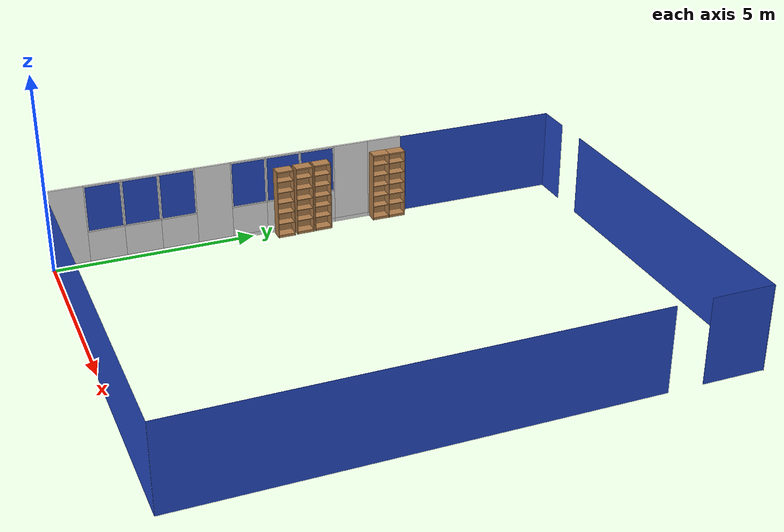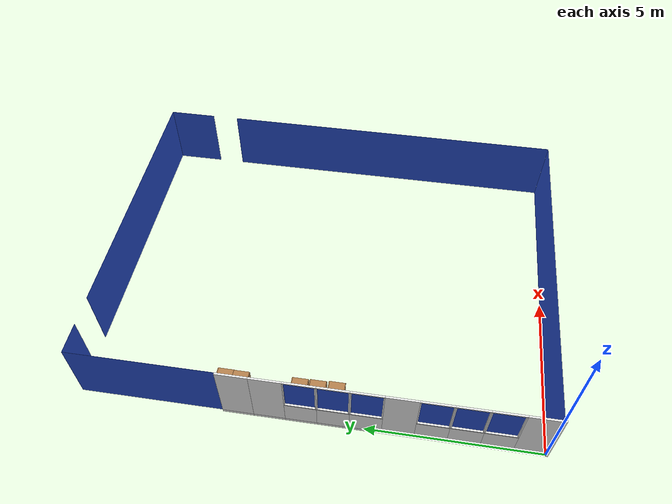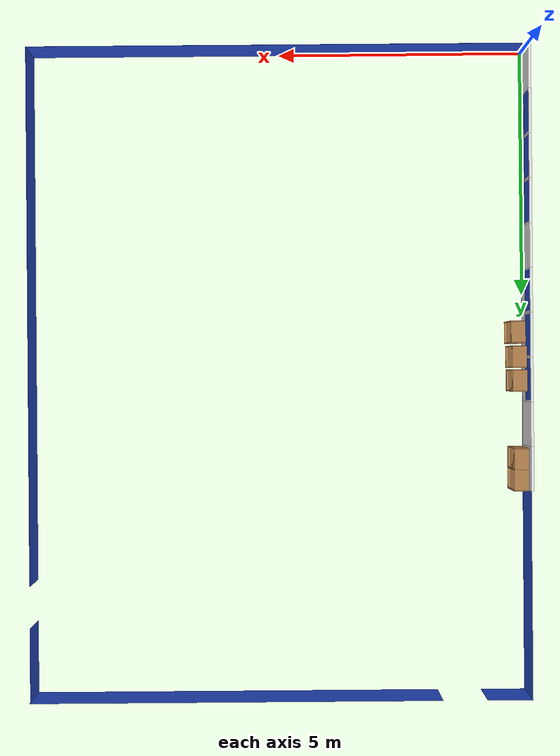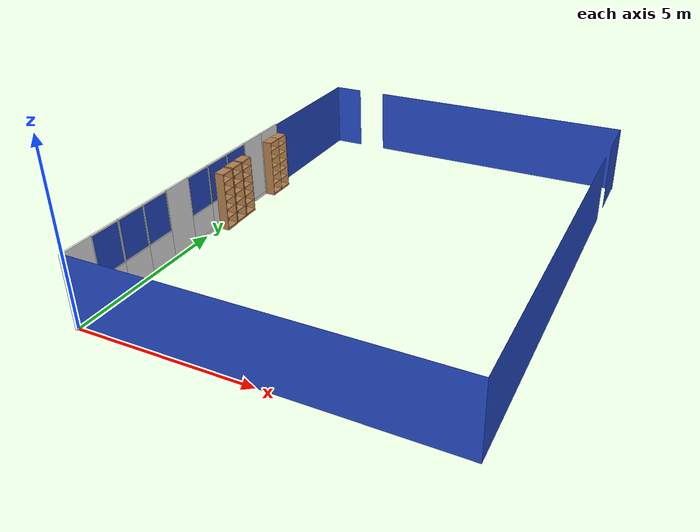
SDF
<sdf version="1.6">
 <world name="robocup_apartment">
  <model name="wall_x00y00">
   <link name="link">
    <inertial>
     <mass>50</mass>
     <inertia><ixx>1</ixx><ixy>0</ixy><ixz>0</ixz><iyy>1</iyy><iyz>0</iyz><izz>1</izz></inertia>
    </inertial>
    <visual name="_frame">
     <pose>0 0 1.045 0 -0 0</pose>
     <geometry><box><size>0.055 0.055 2.09</size></box></geometry>
     <material>
      <script><uri>model://base_materials/color/scripts</uri><name>hsr_color/white</name></script>
     </material>
    </visual>
    <velocity_decay><linear>0</linear><angular>0</angular></velocity_decay>
   </link>
   <static>1</static>
   <pose>-0.0275 -0.0275 0 0 -0 0</pose>
  </model>
  <model name="wall_x00y01">
   <link name="link">
    <inertial>
     <mass>50</mass>
     <inertia><ixx>1</ixx><ixy>0</ixy><ixz>0</ixz><iyy>1</iyy><iyz>0</iyz><izz>1</izz></inertia>
    </inertial>
    <visual name="bottom_frame">
     <pose>0 0 0.05 0 -0 0</pose>
     <geometry><box><size>0.055 0.9 0.1</size></box></geometry>
     <material>
      <script><uri>model://base_materials/color/scripts</uri><name>hsr_color/white</name></script>
     </material>
    </visual>
    <visual name="wall">
     <pose>0 0 1.095 0 -0 0</pose>
     <geometry><box><size>0.055 0.9 1.99</size></box></geometry>
     <material>
      <script>
       <uri>model://base_materials/wall/scripts</uri>
       <uri>model://base_materials/wall/textures</uri>
       <name>wall/white_noise</name>
      </script>
     </material>
    </visual>
    <velocity_decay><linear>0</linear><angular>0</angular></velocity_decay>
   </link>
   <static>1</static>
   <pose>-0.0275 0.45 0 0 -0 0</pose>
  </model>
  <model name="wall_x00y02">
   <link name="link">
    <inertial>
     <mass>50</mass>
     <inertia><ixx>1</ixx><ixy>0</ixy><ixz>0</ixz><iyy>1</iyy><iyz>0</iyz><izz>1</izz></inertia>
    </inertial>
    <visual name="bottom_frame">
     <pose>0 0 0.05 0 -0 0</pose>
     <geometry><box><size>0.055 0.9 0.1</size></box></geometry>
     <material>
      <script><uri>model://base_materials/color/scripts</uri><name>hsr_color/white</name></script>
     </material>
    </visual>
    <visual name="wall">
     <pose>0 0 0.4875 0 -0 0</pose>
     <geometry><box><size>0.055 0.9 0.775</size></box></geometry>
     <material>
      <script>
       <uri>model://base_materials/wall/scripts</uri>
       <uri>model://base_materials/wall/textures</uri>
       <name>wall/white_noise</name>
      </script>
     </material>
    </visual>
    <visual name="center_frame">
     <pose>0 0 0.8925 0 -0 0</pose>
     <geometry><box><size>0.055 0.9 0.035</size></box></geometry>
     <material>
      <script><uri>model://base_materials/color/scripts</uri><name>hsr_color/white</name></script>
     </material>
    </visual>
    <visual name="right_frame">
     <pose>0 0.4325 1.48 0 -0 0</pose>
     <geometry><box><size>0.055 0.035 1.14</size></box></geometry>
     <material>
      <script><uri>model://base_materials/color/scripts</uri><name>hsr_color/white</name></script>
     </material>
    </visual>
    <visual name="left_frame">
     <pose>0 -0.4325 1.48 0 -0 0</pose>
     <geometry><box><size>0.055 0.035 1.14</size></box></geometry>
     <material>
      <script><uri>model://base_materials/color/scripts</uri><name>hsr_color/white</name></script>
     </material>
    </visual>
    <visual name="top_frame">
     <pose>0 0 2.07 0 -0 0</pose>
     <geometry><box><size>0.055 0.9 0.04</size></box></geometry>
     <material>
      <script><uri>model://base_materials/color/scripts</uri><name>hsr_color/white</name></script>
     </material>
    </visual>
    <velocity_decay><linear>0</linear><angular>0</angular></velocity_decay>
   </link>
   <static>1</static>
   <pose>-0.0275 1.35 0 0 -0 0</pose>
  </model>
  <model name="wall_x00y03">
   <link name="link">
    <inertial>
     <mass>50</mass>
     <inertia><ixx>1</ixx><ixy>0</ixy><ixz>0</ixz><iyy>1</iyy><iyz>0</iyz><izz>1</izz></inertia>
    </inertial>
    <visual name="bottom_frame">
     <pose>0 0 0.05 0 -0 0</pose>
     <geometry><box><size>0.055 0.9 0.1</size></box></geometry>
     <material>
      <script><uri>model://base_materials/color/scripts</uri><name>hsr_color/white</name></script>
     </material>
    </visual>
    <visual name="wall">
     <pose>0 0 0.4875 0 -0 0</pose>
     <geometry><box><size>0.055 0.9 0.775</size></box></geometry>
     <material>
      <script>
       <uri>model://base_materials/wall/scripts</uri>
       <uri>model://base_materials/wall/textures</uri>
       <name>wall/white_noise</name>
      </script>
     </material>
    </visual>
    <visual name="center_frame">
     <pose>0 0 0.8925 0 -0 0</pose>
     <geometry><box><size>0.055 0.9 0.035</size></box></geometry>
     <material>
      <script><uri>model://base_materials/color/scripts</uri><name>hsr_color/white</name></script>
     </material>
    </visual>
    <visual name="right_frame">
     <pose>0 0.4325 1.48 0 -0 0</pose>
     <geometry><box><size>0.055 0.035 1.14</size></box></geometry>
     <material>
      <script><uri>model://base_materials/color/scripts</uri><name>hsr_color/white</name></script>
     </material>
    </visual>
    <visual name="left_frame">
     <pose>0 -0.4325 1.48 0 -0 0</pose>
     <geometry><box><size>0.055 0.035 1.14</size></box></geometry>
     <material>
      <script><uri>model://base_materials/color/scripts</uri><name>hsr_color/white</name></script>
     </material>
    </visual>
    <visual name="top_frame">
     <pose>0 0 2.07 0 -0 0</pose>
     <geometry><box><size>0.055 0.9 0.04</size></box></geometry>
     <material>
      <script><uri>model://base_materials/color/scripts</uri><name>hsr_color/white</name></script>
     </material>
    </visual>
    <velocity_decay><linear>0</linear><angular>0</angular></velocity_decay>
   </link>
   <static>1</static>
   <pose>-0.0275 2.25 0 0 -0 0</pose>
  </model>
  <model name="wall_x00y04">
   <link name="link">
    <inertial>
     <mass>50</mass>
     <inertia><ixx>1</ixx><ixy>0</ixy><ixz>0</ixz><iyy>1</iyy><iyz>0</iyz><izz>1</izz></inertia>
    </inertial>
    <visual name="bottom_frame">
     <pose>0 0 0.05 0 -0 0</pose>
     <geometry><box><size>0.055 0.9 0.1</size></box></geometry>
     <material>
      <script><uri>model://base_materials/color/scripts</uri><name>hsr_color/white</name></script>
     </material>
    </visual>
    <visual name="wall">
     <pose>0 0 0.4875 0 -0 0</pose>
     <geometry><box><size>0.055 0.9 0.775</size></box></geometry>
     <material>
      <script>
       <uri>model://base_materials/wall/scripts</uri>
       <uri>model://base_materials/wall/textures</uri>
       <name>wall/white_noise</name>
      </script>
     </material>
    </visual>
    <visual name="center_frame">
     <pose>0 0 0.8925 0 -0 0</pose>
     <geometry><box><size>0.055 0.9 0.035</size></box></geometry>
     <material>
      <script><uri>model://base_materials/color/scripts</uri><name>hsr_color/white</name></script>
     </material>
    </visual>
    <visual name="right_frame">
     <pose>0 0.4325 1.48 0 -0 0</pose>
     <geometry><box><size>0.055 0.035 1.14</size></box></geometry>
     <material>
      <script><uri>model://base_materials/color/scripts</uri><name>hsr_color/white</name></script>
     </material>
    </visual>
    <visual name="left_frame">
     <pose>0 -0.4325 1.48 0 -0 0</pose>
     <geometry><box><size>0.055 0.035 1.14</size></box></geometry>
     <material>
      <script><uri>model://base_materials/color/scripts</uri><name>hsr_color/white</name></script>
     </material>
    </visual>
    <visual name="top_frame">
     <pose>0 0 2.07 0 -0 0</pose>
     <geometry><box><size>0.055 0.9 0.04</size></box></geometry>
     <material>
      <script><uri>model://base_materials/color/scripts</uri><name>hsr_color/white</name></script>
     </material>
    </visual>
    <velocity_decay><linear>0</linear><angular>0</angular></velocity_decay>
   </link>
   <static>1</static>
   <pose>-0.0275 3.15 0 0 -0 0</pose>
  </model>
  <model name="wall_x00y05">
   <link name="link">
    <inertial>
     <mass>50</mass>
     <inertia><ixx>1</ixx><ixy>0</ixy><ixz>0</ixz><iyy>1</iyy><iyz>0</iyz><izz>1</izz></inertia>
    </inertial>
    <visual name="bottom_frame">
     <pose>0 0 0.05 0 -0 0</pose>
     <geometry><box><size>0.055 0.9 0.1</size></box></geometry>
     <material>
      <script><uri>model://base_materials/color/scripts</uri><name>hsr_color/white</name></script>
     </material>
    </visual>
    <visual name="wall">
     <pose>0 0 1.095 0 -0 0</pose>
     <geometry><box><size>0.055 0.9 1.99</size></box></geometry>
     <material>
      <script>
       <uri>model://base_materials/wall/scripts</uri>
       <uri>model://base_materials/wall/textures</uri>
       <name>wall/white_noise</name>
      </script>
     </material>
    </visual>
    <velocity_decay><linear>0</linear><angular>0</angular></velocity_decay>
   </link>
   <static>1</static>
   <pose>-0.0275 4.05 0 0 -0 0</pose>
  </model>
  <model name="wall_x00y06">
   <link name="link">
    <inertial>
     <mass>50</mass>
     <inertia><ixx>1</ixx><ixy>0</ixy><ixz>0</ixz><iyy>1</iyy><iyz>0</iyz><izz>1</izz></inertia>
    </inertial>
    <visual name="bottom_frame">
     <pose>0 0 0.05 0 -0 0</pose>
     <geometry><box><size>0.055 0.9 0.1</size></box></geometry>
     <material>
      <script><uri>model://base_materials/color/scripts</uri><name>hsr_color/white</name></script>
     </material>
    </visual>
    <visual name="wall">
     <pose>0 0 0.4875 0 -0 0</pose>
     <geometry><box><size>0.055 0.9 0.775</size></box></geometry>
     <material>
      <script>
       <uri>model://base_materials/wall/scripts</uri>
       <uri>model://base_materials/wall/textures</uri>
       <name>wall/white_noise</name>
      </script>
     </material>
    </visual>
    <visual name="center_frame">
     <pose>0 0 0.8925 0 -0 0</pose>
     <geometry><box><size>0.055 0.9 0.035</size></box></geometry>
     <material>
      <script><uri>model://base_materials/color/scripts</uri><name>hsr_color/white</name></script>
     </material>
    </visual>
    <visual name="right_frame">
     <pose>0 0.4325 1.48 0 -0 0</pose>
     <geometry><box><size>0.055 0.035 1.14</size></box></geometry>
     <material>
      <script><uri>model://base_materials/color/scripts</uri><name>hsr_color/white</name></script>
     </material>
    </visual>
    <visual name="left_frame">
     <pose>0 -0.4325 1.48 0 -0 0</pose>
     <geometry><box><size>0.055 0.035 1.14</size></box></geometry>
     <material>
      <script><uri>model://base_materials/color/scripts</uri><name>hsr_color/white</name></script>
     </material>
    </visual>
    <visual name="top_frame">
     <pose>0 0 2.07 0 -0 0</pose>
     <geometry><box><size>0.055 0.9 0.04</size></box></geometry>
     <material>
      <script><uri>model://base_materials/color/scripts</uri><name>hsr_color/white</name></script>
     </material>
    </visual>
    <velocity_decay><linear>0</linear><angular>0</angular></velocity_decay>
   </link>
   <static>1</static>
   <pose>-0.0275 4.95 0 0 -0 0</pose>
  </model>
  <model name="wall_x00y07">
   <link name="link">
    <inertial>
     <mass>50</mass>
     <inertia><ixx>1</ixx><ixy>0</ixy><ixz>0</ixz><iyy>1</iyy><iyz>0</iyz><izz>1</izz></inertia>
    </inertial>
    <visual name="bottom_frame">
     <pose>0 0 0.05 0 -0 0</pose>
     <geometry><box><size>0.055 0.9 0.1</size></box></geometry>
     <material>
      <script><uri>model://base_materials/color/scripts</uri><name>hsr_color/white</name></script>
     </material>
    </visual>
    <visual name="wall">
     <pose>0 0 0.4875 0 -0 0</pose>
     <geometry><box><size>0.055 0.9 0.775</size></box></geometry>
     <material>
      <script>
       <uri>model://base_materials/wall/scripts</uri>
       <uri>model://base_materials/wall/textures</uri>
       <name>wall/white_noise</name>
      </script>
     </material>
    </visual>
    <visual name="center_frame">
     <pose>0 0 0.8925 0 -0 0</pose>
     <geometry><box><size>0.055 0.9 0.035</size></box></geometry>
     <material>
      <script><uri>model://base_materials/color/scripts</uri><name>hsr_color/white</name></script>
     </material>
    </visual>
    <visual name="right_frame">
     <pose>0 0.4325 1.48 0 -0 0</pose>
     <geometry><box><size>0.055 0.035 1.14</size></box></geometry>
     <material>
      <script><uri>model://base_materials/color/scripts</uri><name>hsr_color/white</name></script>
     </material>
    </visual>
    <visual name="left_frame">
     <pose>0 -0.4325 1.48 0 -0 0</pose>
     <geometry><box><size>0.055 0.035 1.14</size></box></geometry>
     <material>
      <script><uri>model://base_materials/color/scripts</uri><name>hsr_color/white</name></script>
     </material>
    </visual>
    <visual name="top_frame">
     <pose>0 0 2.07 0 -0 0</pose>
     <geometry><box><size>0.055 0.9 0.04</size></box></geometry>
     <material>
      <script><uri>model://base_materials/color/scripts</uri><name>hsr_color/white</name></script>
     </material>
    </visual>
    <velocity_decay><linear>0</linear><angular>0</angular></velocity_decay>
   </link>
   <static>1</static>
   <pose>-0.0275 5.85 0 0 -0 0</pose>
  </model>
  <model name="wall_x00y08">
   <link name="link">
    <inertial>
     <mass>50</mass>
     <inertia><ixx>1</ixx><ixy>0</ixy><ixz>0</ixz><iyy>1</iyy><iyz>0</iyz><izz>1</izz></inertia>
    </inertial>
    <visual name="bottom_frame">
     <pose>0 0 0.05 0 -0 0</pose>
     <geometry><box><size>0.055 0.9 0.1</size></box></geometry>
     <material>
      <script><uri>model://base_materials/color/scripts</uri><name>hsr_color/white</name></script>
     </material>
    </visual>
    <visual name="wall">
     <pose>0 0 0.4875 0 -0 0</pose>
     <geometry><box><size>0.055 0.9 0.775</size></box></geometry>
     <material>
      <script>
       <uri>model://base_materials/wall/scripts</uri>
       <uri>model://base_materials/wall/textures</uri>
       <name>wall/white_noise</name>
      </script>
     </material>
    </visual>
    <visual name="center_frame">
     <pose>0 0 0.8925 0 -0 0</pose>
     <geometry><box><size>0.055 0.9 0.035</size></box></geometry>
     <material>
      <script><uri>model://base_materials/color/scripts</uri><name>hsr_color/white</name></script>
     </material>
    </visual>
    <visual name="right_frame">
     <pose>0 0.4325 1.48 0 -0 0</pose>
     <geometry><box><size>0.055 0.035 1.14</size></box></geometry>
     <material>
      <script><uri>model://base_materials/color/scripts</uri><name>hsr_color/white</name></script>
     </material>
    </visual>
    <visual name="left_frame">
     <pose>0 -0.4325 1.48 0 -0 0</pose>
     <geometry><box><size>0.055 0.035 1.14</size></box></geometry>
     <material>
      <script><uri>model://base_materials/color/scripts</uri><name>hsr_color/white</name></script>
     </material>
    </visual>
    <visual name="top_frame">
     <pose>0 0 2.07 0 -0 0</pose>
     <geometry><box><size>0.055 0.9 0.04</size></box></geometry>
     <material>
      <script><uri>model://base_materials/color/scripts</uri><name>hsr_color/white</name></script>
     </material>
    </visual>
    <velocity_decay><linear>0</linear><angular>0</angular></velocity_decay>
   </link>
   <static>1</static>
   <pose>-0.0275 6.75 0 0 -0 0</pose>
  </model>
  <model name="wall_x00y09">
   <link name="link">
    <inertial>
     <mass>50</mass>
     <inertia><ixx>1</ixx><ixy>0</ixy><ixz>0</ixz><iyy>1</iyy><iyz>0</iyz><izz>1</izz></inertia>
    </inertial>
    <visual name="bottom_frame">
     <pose>0 0 0.05 0 -0 0</pose>
     <geometry><box><size>0.055 0.9 0.1</size></box></geometry>
     <material>
      <script><uri>model://base_materials/color/scripts</uri><name>hsr_color/white</name></script>
     </material>
    </visual>
    <visual name="wall">
     <pose>0 0 1.095 0 -0 0</pose>
     <geometry><box><size>0.055 0.9 1.99</size></box></geometry>
     <material>
      <script>
       <uri>model://base_materials/wall/scripts</uri>
       <uri>model://base_materials/wall/textures</uri>
       <name>wall/white_noise</name>
      </script>
     </material>
    </visual>
    <velocity_decay><linear>0</linear><angular>0</angular></velocity_decay>
   </link>
   <static>1</static>
   <pose>-0.0275 7.65 0 0 -0 0</pose>
  </model>
  <model name="wall_x00y10">
   <link name="link">
    <inertial>
     <mass>50</mass>
     <inertia><ixx>1</ixx><ixy>0</ixy><ixz>0</ixz><iyy>1</iyy><iyz>0</iyz><izz>1</izz></inertia>
    </inertial>
    <visual name="bottom_frame">
     <pose>0 0 0.05 0 -0 0</pose>
     <geometry><box><size>0.055 0.9 0.1</size></box></geometry>
     <material>
      <script><uri>model://base_materials/color/scripts</uri><name>hsr_color/white</name></script>
     </material>
    </visual>
    <visual name="wall">
     <pose>0 0 1.095 0 -0 0</pose>
     <geometry><box><size>0.055 0.9 1.99</size></box></geometry>
     <material>
      <script>
       <uri>model://base_materials/wall/scripts</uri>
       <uri>model://base_materials/wall/textures</uri>
       <name>wall/white_noise</name>
      </script>
     </material>
    </visual>
    <velocity_decay><linear>0</linear><angular>0</angular></velocity_decay>
   </link>
   <static>1</static>
   <pose>-0.0275 8.55 0 0 -0 0</pose>
  </model>
  <model name="apartment_wall_collision">
   <link name="link">
    <inertial>
     <mass>50</mass>
     <inertia><ixx>1</ixx><ixy>0</ixy><ixz>0</ixz><iyy>1</iyy><iyz>0</iyz><izz>1</izz></inertia>
    </inertial>
    <visual name="wall_x00y00_x00y15">
     <pose>-0.002 6.59 1.04 0 -0 0</pose>
     <geometry><box><size>0.002 13.2 2.08</size></box></geometry>
     <material>
      <script>
       <uri>model://base_materials/color/scripts</uri>
       <name>hsr_color/cornflowerblue_transparency1</name>
      </script>
     </material>
    </visual>
    <collision name="wall_x00y00_x00y15">
     <pose>-0.002 6.59 1.04 0 -0 0</pose>
     <geometry><box><size>0.002 13.2 2.08</size></box></geometry>
    </collision>
    <visual name="wall_x00y00_x13y00">
     <pose>5.0375 -0.002 1.04 0 -0 0</pose>
     <geometry><box><size>10.08 0.002 2.08</size></box></geometry>
     <material>
      <script>
       <uri>model://base_materials/color/scripts</uri>
       <name>hsr_color/cornflowerblue_transparency1</name>
      </script>
     </material>
    </visual>
    <collision name="wall_x00y00_x13y00">
     <pose>5.0375 -0.002 1.04 0 -0 0</pose>
     <geometry><box><size>10.08 0.002 2.08</size></box></geometry>
    </collision>
    <visual name="wall_x13y00_x13y12">
     <pose>10.077 5.42 1.04 0 -0 0</pose>
     <geometry><box><size>0.002 10.84 2.08</size></box></geometry>
     <material>
      <script>
       <uri>model://base_materials/color/scripts</uri>
       <name>hsr_color/cornflowerblue_transparency1</name>
      </script>
     </material>
    </visual>
    <collision name="wall_x13y00_x13y12">
     <pose>10.077 5.42 1.04 0 -0 0</pose>
     <geometry><box><size>0.002 10.84 2.08</size></box></geometry>
    </collision>
    <visual name="wall_x13y14_x13y16">
     <pose>10.077 12.43 1.04 0 -0 0</pose>
     <geometry><box><size>0.002 1.5 2.08</size></box></geometry>
     <material>
      <script>
       <uri>model://base_materials/color/scripts</uri>
       <name>hsr_color/cornflowerblue_transparency1</name>
      </script>
     </material>
    </visual>
    <collision name="wall_x13y14_x13y16">
     <pose>10.077 12.43 1.04 0 -0 0</pose>
     <geometry><box><size>0.002 1.5 2.08</size></box></geometry>
    </collision>
    <visual name="wall_x00y16_x01y16">
     <pose>0.4525 13.182 1.04 0 -0 0</pose>
     <geometry><box><size>0.904 0.002 2.08</size></box></geometry>
     <material>
      <script>
       <uri>model://base_materials/color/scripts</uri>
       <name>hsr_color/cornflowerblue_transparency1</name>
      </script>
     </material>
    </visual>
    <collision name="wall_x00y16_x01y16">
     <pose>0.4525 13.182 1.04 0 -0 0</pose>
     <geometry><box><size>0.904 0.002 2.08</size></box></geometry>
    </collision>
    <visual name="wall_x03y16_x13y16">
     <pose>5.948 13.182 1.04 0 -0 0</pose>
     <geometry><box><size>8.3 0.002 2.08</size></box></geometry>
     <material>
      <script>
       <uri>model://base_materials/color/scripts</uri>
       <name>hsr_color/cornflowerblue_transparency1</name>
      </script>
     </material>
    </visual>
    <collision name="wall_x03y16_x13y16">
     <pose>5.948 13.182 1.04 0 -0 0</pose>
     <geometry><box><size>8.3 0.002 2.08</size></box></geometry>
    </collision>
    <velocity_decay><linear>0</linear><angular>0</angular></velocity_decay>
   </link>
   <static>1</static>
  </model>
  <model name="high_shelf05_clone">
   <link name="link">
    <inertial>
     <mass>5</mass>
     <inertia><ixx>1</ixx><ixy>0</ixy><ixz>0</ixz><iyy>1</iyy><iyz>0</iyz><izz>1</izz></inertia>
    </inertial>
    <visual name="left_board">
     <pose>-0.1475 0.009 0.898 0 -0 0</pose>
     <geometry><box><size>0.295 0.018 1.796</size></box></geometry>
     <material>
      <script>
       <uri>model://base_materials/wood/scripts</uri>
       <uri>model://base_materials/wood/textures</uri>
       <name>base_materials/light_wood</name>
      </script>
     </material>
    </visual>
    <collision name="collision_left_board">
     <pose>-0.1475 0.009 0.898 0 -0 0</pose>
     <geometry><box><size>0.295 0.018 1.796</size></box></geometry>
    </collision>
    <visual name="right_board">
     <pose>-0.1475 0.441 0.898 0 -0 0</pose>
     <geometry><box><size>0.295 0.018 1.796</size></box></geometry>
     <material>
      <script>
       <uri>model://base_materials/wood/scripts</uri>
       <uri>model://base_materials/wood/textures</uri>
       <name>base_materials/light_wood</name>
      </script>
     </material>
    </visual>
    <collision name="collision_right_board">
     <pose>-0.1475 0.441 0.898 0 -0 0</pose>
     <geometry><box><size>0.295 0.018 1.796</size></box></geometry>
    </collision>
    <visual name="top_board">
     <pose>-0.1475 0.225 1.7825 0 -0 0</pose>
     <geometry><box><size>0.295 0.414 0.035</size></box></geometry>
     <material>
      <script>
       <uri>model://base_materials/wood/scripts</uri>
       <uri>model://base_materials/wood/textures</uri>
       <name>base_materials/light_wood</name>
      </script>
     </material>
    </visual>
    <collision name="collision_top_board">
     <pose>-0.1475 0.225 1.7825 0 -0 0</pose>
     <geometry><box><size>0.295 0.414 0.035</size></box></geometry>
    </collision>
    <visual name="1st_shelf">
     <pose>-0.162 0.225 1.51 0 -0 0</pose>
     <geometry><box><size>0.266 0.414 0.018</size></box></geometry>
     <material>
      <script>
       <uri>model://base_materials/wood/scripts</uri>
       <uri>model://base_materials/wood/textures</uri>
       <name>base_materials/light_wood</name>
      </script>
     </material>
    </visual>
    <collision name="collision_1st_shelf">
     <pose>-0.162 0.225 1.51 0 -0 0</pose>
     <geometry><box><size>0.266 0.414 0.018</size></box></geometry>
    </collision>
    <visual name="2nd_shelf">
     <pose>-0.162 0.225 1.22 0 -0 0</pose>
     <geometry><box><size>0.266 0.414 0.018</size></box></geometry>
     <material>
      <script>
       <uri>model://base_materials/wood/scripts</uri>
       <uri>model://base_materials/wood/textures</uri>
       <name>base_materials/light_wood</name>
      </script>
     </material>
    </visual>
    <collision name="collision_2nd_shelf">
     <pose>-0.162 0.225 1.22 0 -0 0</pose>
     <geometry><box><size>0.266 0.414 0.018</size></box></geometry>
    </collision>
    <visual name="3rd_shelf">
     <pose>-0.162 0.225 0.93 0 -0 0</pose>
     <geometry><box><size>0.266 0.414 0.018</size></box></geometry>
     <material>
      <script>
       <uri>model://base_materials/wood/scripts</uri>
       <uri>model://base_materials/wood/textures</uri>
       <name>base_materials/light_wood</name>
      </script>
     </material>
    </visual>
    <collision name="collision_3rd_shelf">
     <pose>-0.162 0.225 0.93 0 -0 0</pose>
     <geometry><box><size>0.266 0.414 0.018</size></box></geometry>
    </collision>
    <visual name="4th_shelf">
     <pose>-0.162 0.225 0.65 0 -0 0</pose>
     <geometry><box><size>0.266 0.414 0.018</size></box></geometry>
     <material>
      <script>
       <uri>model://base_materials/wood/scripts</uri>
       <uri>model://base_materials/wood/textures</uri>
       <name>base_materials/light_wood</name>
      </script>
     </material>
    </visual>
    <collision name="collision_4th_shelf">
     <pose>-0.162 0.225 0.65 0 -0 0</pose>
     <geometry><box><size>0.266 0.414 0.018</size></box></geometry>
    </collision>
    <visual name="5th_shelf">
     <pose>-0.162 0.225 0.36 0 -0 0</pose>
     <geometry><box><size>0.266 0.414 0.018</size></box></geometry>
     <material>
      <script>
       <uri>model://base_materials/wood/scripts</uri>
       <uri>model://base_materials/wood/textures</uri>
       <name>base_materials/light_wood</name>
      </script>
     </material>
    </visual>
    <collision name="collision_5th_shelf">
     <pose>-0.162 0.225 0.36 0 -0 0</pose>
     <geometry><box><size>0.266 0.414 0.018</size></box></geometry>
    </collision>
    <visual name="bottom_board">
     <pose>-0.1475 0.225 0.035 0 -0 0</pose>
     <geometry><box><size>0.295 0.414 0.07</size></box></geometry>
     <material>
      <script>
       <uri>model://base_materials/wood/scripts</uri>
       <uri>model://base_materials/wood/textures</uri>
       <name>base_materials/light_wood</name>
      </script>
     </material>
    </visual>
    <collision name="collision_bottom_board">
     <pose>-0.1475 0.225 0.035 0 -0 0</pose>
     <geometry><box><size>0.295 0.414 0.07</size></box></geometry>
    </collision>
    <visual name="back_board">
     <pose>-0.286 0.225 0.898 0 -0 0</pose>
     <geometry><box><size>0.018 0.414 1.796</size></box></geometry>
     <material>
      <script>
       <uri>model://base_materials/wood/scripts</uri>
       <uri>model://base_materials/wood/textures</uri>
       <name>base_materials/light_wood</name>
      </script>
     </material>
    </visual>
    <collision name="collision_back_board">
     <pose>-0.286 0.225 0.898 0 -0 0</pose>
     <geometry><box><size>0.018 0.414 1.796</size></box></geometry>
    </collision>
    <velocity_decay><linear>0</linear><angular>0</angular></velocity_decay>
   </link>
   <static>1</static>
   <pose>0.315947 8.55818 0 0 -0 0</pose>
  </model>
  <model name="high_shelf05_clone_0">
   <link name="link">
    <inertial>
     <mass>5</mass>
     <inertia><ixx>1</ixx><ixy>0</ixy><ixz>0</ixz><iyy>1</iyy><iyz>0</iyz><izz>1</izz></inertia>
    </inertial>
    <visual name="left_board">
     <pose>-0.1475 0.009 0.898 0 -0 0</pose>
     <geometry><box><size>0.295 0.018 1.796</size></box></geometry>
     <material>
      <script>
       <uri>model://base_materials/wood/scripts</uri>
       <uri>model://base_materials/wood/textures</uri>
       <name>base_materials/light_wood</name>
      </script>
     </material>
    </visual>
    <collision name="collision_left_board">
     <pose>-0.1475 0.009 0.898 0 -0 0</pose>
     <geometry><box><size>0.295 0.018 1.796</size></box></geometry>
    </collision>
    <visual name="right_board">
     <pose>-0.1475 0.441 0.898 0 -0 0</pose>
     <geometry><box><size>0.295 0.018 1.796</size></box></geometry>
     <material>
      <script>
       <uri>model://base_materials/wood/scripts</uri>
       <uri>model://base_materials/wood/textures</uri>
       <name>base_materials/light_wood</name>
      </script>
     </material>
    </visual>
    <collision name="collision_right_board">
     <pose>-0.1475 0.441 0.898 0 -0 0</pose>
     <geometry><box><size>0.295 0.018 1.796</size></box></geometry>
    </collision>
    <visual name="top_board">
     <pose>-0.1475 0.225 1.7825 0 -0 0</pose>
     <geometry><box><size>0.295 0.414 0.035</size></box></geometry>
     <material>
      <script>
       <uri>model://base_materials/wood/scripts</uri>
       <uri>model://base_materials/wood/textures</uri>
       <name>base_materials/light_wood</name>
      </script>
     </material>
    </visual>
    <collision name="collision_top_board">
     <pose>-0.1475 0.225 1.7825 0 -0 0</pose>
     <geometry><box><size>0.295 0.414 0.035</size></box></geometry>
    </collision>
    <visual name="1st_shelf">
     <pose>-0.162 0.225 1.51 0 -0 0</pose>
     <geometry><box><size>0.266 0.414 0.018</size></box></geometry>
     <material>
      <script>
       <uri>model://base_materials/wood/scripts</uri>
       <uri>model://base_materials/wood/textures</uri>
       <name>base_materials/light_wood</name>
      </script>
     </material>
    </visual>
    <collision name="collision_1st_shelf">
     <pose>-0.162 0.225 1.51 0 -0 0</pose>
     <geometry><box><size>0.266 0.414 0.018</size></box></geometry>
    </collision>
    <visual name="2nd_shelf">
     <pose>-0.162 0.225 1.22 0 -0 0</pose>
     <geometry><box><size>0.266 0.414 0.018</size></box></geometry>
     <material>
      <script>
       <uri>model://base_materials/wood/scripts</uri>
       <uri>model://base_materials/wood/textures</uri>
       <name>base_materials/light_wood</name>
      </script>
     </material>
    </visual>
    <collision name="collision_2nd_shelf">
     <pose>-0.162 0.225 1.22 0 -0 0</pose>
     <geometry><box><size>0.266 0.414 0.018</size></box></geometry>
    </collision>
    <visual name="3rd_shelf">
     <pose>-0.162 0.225 0.93 0 -0 0</pose>
     <geometry><box><size>0.266 0.414 0.018</size></box></geometry>
     <material>
      <script>
       <uri>model://base_materials/wood/scripts</uri>
       <uri>model://base_materials/wood/textures</uri>
       <name>base_materials/light_wood</name>
      </script>
     </material>
    </visual>
    <collision name="collision_3rd_shelf">
     <pose>-0.162 0.225 0.93 0 -0 0</pose>
     <geometry><box><size>0.266 0.414 0.018</size></box></geometry>
    </collision>
    <visual name="4th_shelf">
     <pose>-0.162 0.225 0.65 0 -0 0</pose>
     <geometry><box><size>0.266 0.414 0.018</size></box></geometry>
     <material>
      <script>
       <uri>model://base_materials/wood/scripts</uri>
       <uri>model://base_materials/wood/textures</uri>
       <name>base_materials/light_wood</name>
      </script>
     </material>
    </visual>
    <collision name="collision_4th_shelf">
     <pose>-0.162 0.225 0.65 0 -0 0</pose>
     <geometry><box><size>0.266 0.414 0.018</size></box></geometry>
    </collision>
    <visual name="5th_shelf">
     <pose>-0.162 0.225 0.36 0 -0 0</pose>
     <geometry><box><size>0.266 0.414 0.018</size></box></geometry>
     <material>
      <script>
       <uri>model://base_materials/wood/scripts</uri>
       <uri>model://base_materials/wood/textures</uri>
       <name>base_materials/light_wood</name>
      </script>
     </material>
    </visual>
    <collision name="collision_5th_shelf">
     <pose>-0.162 0.225 0.36 0 -0 0</pose>
     <geometry><box><size>0.266 0.414 0.018</size></box></geometry>
    </collision>
    <visual name="bottom_board">
     <pose>-0.1475 0.225 0.035 0 -0 0</pose>
     <geometry><box><size>0.295 0.414 0.07</size></box></geometry>
     <material>
      <script>
       <uri>model://base_materials/wood/scripts</uri>
       <uri>model://base_materials/wood/textures</uri>
       <name>base_materials/light_wood</name>
      </script>
     </material>
    </visual>
    <collision name="collision_bottom_board">
     <pose>-0.1475 0.225 0.035 0 -0 0</pose>
     <geometry><box><size>0.295 0.414 0.07</size></box></geometry>
    </collision>
    <visual name="back_board">
     <pose>-0.286 0.225 0.898 0 -0 0</pose>
     <geometry><box><size>0.018 0.414 1.796</size></box></geometry>
     <material>
      <script>
       <uri>model://base_materials/wood/scripts</uri>
       <uri>model://base_materials/wood/textures</uri>
       <name>base_materials/light_wood</name>
      </script>
     </material>
    </visual>
    <collision name="collision_back_board">
     <pose>-0.286 0.225 0.898 0 -0 0</pose>
     <geometry><box><size>0.018 0.414 1.796</size></box></geometry>
    </collision>
    <velocity_decay><linear>0</linear><angular>0</angular></velocity_decay>
   </link>
   <static>1</static>
   <pose>0.309833 8.13577 0 0 -0 0</pose>
  </model>
  <model name="high_shelf05_clone_25">
   <link name="link">
    <inertial>
     <mass>5</mass>
     <inertia><ixx>1</ixx><ixy>0</ixy><ixz>0</ixz><iyy>1</iyy><iyz>0</iyz><izz>1</izz></inertia>
    </inertial>
    <visual name="left_board">
     <pose>-0.1475 0.009 0.898 0 -0 0</pose>
     <geometry><box><size>0.295 0.018 1.796</size></box></geometry>
     <material>
      <script>
       <uri>model://base_materials/wood/scripts</uri>
       <uri>model://base_materials/wood/textures</uri>
       <name>base_materials/light_wood</name>
      </script>
     </material>
    </visual>
    <collision name="collision_left_board">
     <pose>-0.1475 0.009 0.898 0 -0 0</pose>
     <geometry><box><size>0.295 0.018 1.796</size></box></geometry>
    </collision>
    <visual name="right_board">
     <pose>-0.1475 0.441 0.898 0 -0 0</pose>
     <geometry><box><size>0.295 0.018 1.796</size></box></geometry>
     <material>
      <script>
       <uri>model://base_materials/wood/scripts</uri>
       <uri>model://base_materials/wood/textures</uri>
       <name>base_materials/light_wood</name>
      </script>
     </material>
    </visual>
    <collision name="collision_right_board">
     <pose>-0.1475 0.441 0.898 0 -0 0</pose>
     <geometry><box><size>0.295 0.018 1.796</size></box></geometry>
    </collision>
    <visual name="top_board">
     <pose>-0.1475 0.225 1.7825 0 -0 0</pose>
     <geometry><box><size>0.295 0.414 0.035</size></box></geometry>
     <material>
      <script>
       <uri>model://base_materials/wood/scripts</uri>
       <uri>model://base_materials/wood/textures</uri>
       <name>base_materials/light_wood</name>
      </script>
     </material>
    </visual>
    <collision name="collision_top_board">
     <pose>-0.1475 0.225 1.7825 0 -0 0</pose>
     <geometry><box><size>0.295 0.414 0.035</size></box></geometry>
    </collision>
    <visual name="1st_shelf">
     <pose>-0.162 0.225 1.51 0 -0 0</pose>
     <geometry><box><size>0.266 0.414 0.018</size></box></geometry>
     <material>
      <script>
       <uri>model://base_materials/wood/scripts</uri>
       <uri>model://base_materials/wood/textures</uri>
       <name>base_materials/light_wood</name>
      </script>
     </material>
    </visual>
    <collision name="collision_1st_shelf">
     <pose>-0.162 0.225 1.51 0 -0 0</pose>
     <geometry><box><size>0.266 0.414 0.018</size></box></geometry>
    </collision>
    <visual name="2nd_shelf">
     <pose>-0.162 0.225 1.22 0 -0 0</pose>
     <geometry><box><size>0.266 0.414 0.018</size></box></geometry>
     <material>
      <script>
       <uri>model://base_materials/wood/scripts</uri>
       <uri>model://base_materials/wood/textures</uri>
       <name>base_materials/light_wood</name>
      </script>
     </material>
    </visual>
    <collision name="collision_2nd_shelf">
     <pose>-0.162 0.225 1.22 0 -0 0</pose>
     <geometry><box><size>0.266 0.414 0.018</size></box></geometry>
    </collision>
    <visual name="3rd_shelf">
     <pose>-0.162 0.225 0.93 0 -0 0</pose>
     <geometry><box><size>0.266 0.414 0.018</size></box></geometry>
     <material>
      <script>
       <uri>model://base_materials/wood/scripts</uri>
       <uri>model://base_materials/wood/textures</uri>
       <name>base_materials/light_wood</name>
      </script>
     </material>
    </visual>
    <collision name="collision_3rd_shelf">
     <pose>-0.162 0.225 0.93 0 -0 0</pose>
     <geometry><box><size>0.266 0.414 0.018</size></box></geometry>
    </collision>
    <visual name="4th_shelf">
     <pose>-0.162 0.225 0.65 0 -0 0</pose>
     <geometry><box><size>0.266 0.414 0.018</size></box></geometry>
     <material>
      <script>
       <uri>model://base_materials/wood/scripts</uri>
       <uri>model://base_materials/wood/textures</uri>
       <name>base_materials/light_wood</name>
      </script>
     </material>
    </visual>
    <collision name="collision_4th_shelf">
     <pose>-0.162 0.225 0.65 0 -0 0</pose>
     <geometry><box><size>0.266 0.414 0.018</size></box></geometry>
    </collision>
    <visual name="5th_shelf">
     <pose>-0.162 0.225 0.36 0 -0 0</pose>
     <geometry><box><size>0.266 0.414 0.018</size></box></geometry>
     <material>
      <script>
       <uri>model://base_materials/wood/scripts</uri>
       <uri>model://base_materials/wood/textures</uri>
       <name>base_materials/light_wood</name>
      </script>
     </material>
    </visual>
    <collision name="collision_5th_shelf">
     <pose>-0.162 0.225 0.36 0 -0 0</pose>
     <geometry><box><size>0.266 0.414 0.018</size></box></geometry>
    </collision>
    <visual name="bottom_board">
     <pose>-0.1475 0.225 0.035 0 -0 0</pose>
     <geometry><box><size>0.295 0.414 0.07</size></box></geometry>
     <material>
      <script>
       <uri>model://base_materials/wood/scripts</uri>
       <uri>model://base_materials/wood/textures</uri>
       <name>base_materials/light_wood</name>
      </script>
     </material>
    </visual>
    <collision name="collision_bottom_board">
     <pose>-0.1475 0.225 0.035 0 -0 0</pose>
     <geometry><box><size>0.295 0.414 0.07</size></box></geometry>
    </collision>
    <visual name="back_board">
     <pose>-0.286 0.225 0.898 0 -0 0</pose>
     <geometry><box><size>0.018 0.414 1.796</size></box></geometry>
     <material>
      <script>
       <uri>model://base_materials/wood/scripts</uri>
       <uri>model://base_materials/wood/textures</uri>
       <name>base_materials/light_wood</name>
      </script>
     </material>
    </visual>
    <collision name="collision_back_board">
     <pose>-0.286 0.225 0.898 0 -0 0</pose>
     <geometry><box><size>0.018 0.414 1.796</size></box></geometry>
    </collision>
    <velocity_decay><linear>0</linear><angular>0</angular></velocity_decay>
   </link>
   <static>1</static>
   <pose>0.331183 6.54662 0 0 -0 0</pose>
  </model>
  <model name="high_shelf05_clone_26">
   <link name="link">
    <inertial>
     <mass>5</mass>
     <inertia><ixx>1</ixx><ixy>0</ixy><ixz>0</ixz><iyy>1</iyy><iyz>0</iyz><izz>1</izz></inertia>
    </inertial>
    <visual name="left_board">
     <pose>-0.1475 0.009 0.898 0 -0 0</pose>
     <geometry><box><size>0.295 0.018 1.796</size></box></geometry>
     <material>
      <script>
       <uri>model://base_materials/wood/scripts</uri>
       <uri>model://base_materials/wood/textures</uri>
       <name>base_materials/light_wood</name>
      </script>
     </material>
    </visual>
    <collision name="collision_left_board">
     <pose>-0.1475 0.009 0.898 0 -0 0</pose>
     <geometry><box><size>0.295 0.018 1.796</size></box></geometry>
    </collision>
    <visual name="right_board">
     <pose>-0.1475 0.441 0.898 0 -0 0</pose>
     <geometry><box><size>0.295 0.018 1.796</size></box></geometry>
     <material>
      <script>
       <uri>model://base_materials/wood/scripts</uri>
       <uri>model://base_materials/wood/textures</uri>
       <name>base_materials/light_wood</name>
      </script>
     </material>
    </visual>
    <collision name="collision_right_board">
     <pose>-0.1475 0.441 0.898 0 -0 0</pose>
     <geometry><box><size>0.295 0.018 1.796</size></box></geometry>
    </collision>
    <visual name="top_board">
     <pose>-0.1475 0.225 1.7825 0 -0 0</pose>
     <geometry><box><size>0.295 0.414 0.035</size></box></geometry>
     <material>
      <script>
       <uri>model://base_materials/wood/scripts</uri>
       <uri>model://base_materials/wood/textures</uri>
       <name>base_materials/light_wood</name>
      </script>
     </material>
    </visual>
    <collision name="collision_top_board">
     <pose>-0.1475 0.225 1.7825 0 -0 0</pose>
     <geometry><box><size>0.295 0.414 0.035</size></box></geometry>
    </collision>
    <visual name="1st_shelf">
     <pose>-0.162 0.225 1.51 0 -0 0</pose>
     <geometry><box><size>0.266 0.414 0.018</size></box></geometry>
     <material>
      <script>
       <uri>model://base_materials/wood/scripts</uri>
       <uri>model://base_materials/wood/textures</uri>
       <name>base_materials/light_wood</name>
      </script>
     </material>
    </visual>
    <collision name="collision_1st_shelf">
     <pose>-0.162 0.225 1.51 0 -0 0</pose>
     <geometry><box><size>0.266 0.414 0.018</size></box></geometry>
    </collision>
    <visual name="2nd_shelf">
     <pose>-0.162 0.225 1.22 0 -0 0</pose>
     <geometry><box><size>0.266 0.414 0.018</size></box></geometry>
     <material>
      <script>
       <uri>model://base_materials/wood/scripts</uri>
       <uri>model://base_materials/wood/textures</uri>
       <name>base_materials/light_wood</name>
      </script>
     </material>
    </visual>
    <collision name="collision_2nd_shelf">
     <pose>-0.162 0.225 1.22 0 -0 0</pose>
     <geometry><box><size>0.266 0.414 0.018</size></box></geometry>
    </collision>
    <visual name="3rd_shelf">
     <pose>-0.162 0.225 0.93 0 -0 0</pose>
     <geometry><box><size>0.266 0.414 0.018</size></box></geometry>
     <material>
      <script>
       <uri>model://base_materials/wood/scripts</uri>
       <uri>model://base_materials/wood/textures</uri>
       <name>base_materials/light_wood</name>
      </script>
     </material>
    </visual>
    <collision name="collision_3rd_shelf">
     <pose>-0.162 0.225 0.93 0 -0 0</pose>
     <geometry><box><size>0.266 0.414 0.018</size></box></geometry>
    </collision>
    <visual name="4th_shelf">
     <pose>-0.162 0.225 0.65 0 -0 0</pose>
     <geometry><box><size>0.266 0.414 0.018</size></box></geometry>
     <material>
      <script>
       <uri>model://base_materials/wood/scripts</uri>
       <uri>model://base_materials/wood/textures</uri>
       <name>base_materials/light_wood</name>
      </script>
     </material>
    </visual>
    <collision name="collision_4th_shelf">
     <pose>-0.162 0.225 0.65 0 -0 0</pose>
     <geometry><box><size>0.266 0.414 0.018</size></box></geometry>
    </collision>
    <visual name="5th_shelf">
     <pose>-0.162 0.225 0.36 0 -0 0</pose>
     <geometry><box><size>0.266 0.414 0.018</size></box></geometry>
     <material>
      <script>
       <uri>model://base_materials/wood/scripts</uri>
       <uri>model://base_materials/wood/textures</uri>
       <name>base_materials/light_wood</name>
      </script>
     </material>
    </visual>
    <collision name="collision_5th_shelf">
     <pose>-0.162 0.225 0.36 0 -0 0</pose>
     <geometry><box><size>0.266 0.414 0.018</size></box></geometry>
    </collision>
    <visual name="bottom_board">
     <pose>-0.1475 0.225 0.035 0 -0 0</pose>
     <geometry><box><size>0.295 0.414 0.07</size></box></geometry>
     <material>
      <script>
       <uri>model://base_materials/wood/scripts</uri>
       <uri>model://base_materials/wood/textures</uri>
       <name>base_materials/light_wood</name>
      </script>
     </material>
    </visual>
    <collision name="collision_bottom_board">
     <pose>-0.1475 0.225 0.035 0 -0 0</pose>
     <geometry><box><size>0.295 0.414 0.07</size></box></geometry>
    </collision>
    <visual name="back_board">
     <pose>-0.286 0.225 0.898 0 -0 0</pose>
     <geometry><box><size>0.018 0.414 1.796</size></box></geometry>
     <material>
      <script>
       <uri>model://base_materials/wood/scripts</uri>
       <uri>model://base_materials/wood/textures</uri>
       <name>base_materials/light_wood</name>
      </script>
     </material>
    </visual>
    <collision name="collision_back_board">
     <pose>-0.286 0.225 0.898 0 -0 0</pose>
     <geometry><box><size>0.018 0.414 1.796</size></box></geometry>
    </collision>
    <velocity_decay><linear>0</linear><angular>0</angular></velocity_decay>
   </link>
   <static>1</static>
   <pose>0.340613 6.06519 0 0 -0 0</pose>
  </model>
  <model name="high_shelf05_clone_27">
   <link name="link">
    <inertial>
     <mass>5</mass>
     <inertia><ixx>1</ixx><ixy>0</ixy><ixz>0</ixz><iyy>1</iyy><iyz>0</iyz><izz>1</izz></inertia>
    </inertial>
    <visual name="left_board">
     <pose>-0.1475 0.009 0.898 0 -0 0</pose>
     <geometry><box><size>0.295 0.018 1.796</size></box></geometry>
     <material>
      <script>
       <uri>model://base_materials/wood/scripts</uri>
       <uri>model://base_materials/wood/textures</uri>
       <name>base_materials/light_wood</name>
      </script>
     </material>
    </visual>
    <collision name="collision_left_board">
     <pose>-0.1475 0.009 0.898 0 -0 0</pose>
     <geometry><box><size>0.295 0.018 1.796</size></box></geometry>
    </collision>
    <visual name="right_board">
     <pose>-0.1475 0.441 0.898 0 -0 0</pose>
     <geometry><box><size>0.295 0.018 1.796</size></box></geometry>
     <material>
      <script>
       <uri>model://base_materials/wood/scripts</uri>
       <uri>model://base_materials/wood/textures</uri>
       <name>base_materials/light_wood</name>
      </script>
     </material>
    </visual>
    <collision name="collision_right_board">
     <pose>-0.1475 0.441 0.898 0 -0 0</pose>
     <geometry><box><size>0.295 0.018 1.796</size></box></geometry>
    </collision>
    <visual name="top_board">
     <pose>-0.1475 0.225 1.7825 0 -0 0</pose>
     <geometry><box><size>0.295 0.414 0.035</size></box></geometry>
     <material>
      <script>
       <uri>model://base_materials/wood/scripts</uri>
       <uri>model://base_materials/wood/textures</uri>
       <name>base_materials/light_wood</name>
      </script>
     </material>
    </visual>
    <collision name="collision_top_board">
     <pose>-0.1475 0.225 1.7825 0 -0 0</pose>
     <geometry><box><size>0.295 0.414 0.035</size></box></geometry>
    </collision>
    <visual name="1st_shelf">
     <pose>-0.162 0.225 1.51 0 -0 0</pose>
     <geometry><box><size>0.266 0.414 0.018</size></box></geometry>
     <material>
      <script>
       <uri>model://base_materials/wood/scripts</uri>
       <uri>model://base_materials/wood/textures</uri>
       <name>base_materials/light_wood</name>
      </script>
     </material>
    </visual>
    <collision name="collision_1st_shelf">
     <pose>-0.162 0.225 1.51 0 -0 0</pose>
     <geometry><box><size>0.266 0.414 0.018</size></box></geometry>
    </collision>
    <visual name="2nd_shelf">
     <pose>-0.162 0.225 1.22 0 -0 0</pose>
     <geometry><box><size>0.266 0.414 0.018</size></box></geometry>
     <material>
      <script>
       <uri>model://base_materials/wood/scripts</uri>
       <uri>model://base_materials/wood/textures</uri>
       <name>base_materials/light_wood</name>
      </script>
     </material>
    </visual>
    <collision name="collision_2nd_shelf">
     <pose>-0.162 0.225 1.22 0 -0 0</pose>
     <geometry><box><size>0.266 0.414 0.018</size></box></geometry>
    </collision>
    <visual name="3rd_shelf">
     <pose>-0.162 0.225 0.93 0 -0 0</pose>
     <geometry><box><size>0.266 0.414 0.018</size></box></geometry>
     <material>
      <script>
       <uri>model://base_materials/wood/scripts</uri>
       <uri>model://base_materials/wood/textures</uri>
       <name>base_materials/light_wood</name>
      </script>
     </material>
    </visual>
    <collision name="collision_3rd_shelf">
     <pose>-0.162 0.225 0.93 0 -0 0</pose>
     <geometry><box><size>0.266 0.414 0.018</size></box></geometry>
    </collision>
    <visual name="4th_shelf">
     <pose>-0.162 0.225 0.65 0 -0 0</pose>
     <geometry><box><size>0.266 0.414 0.018</size></box></geometry>
     <material>
      <script>
       <uri>model://base_materials/wood/scripts</uri>
       <uri>model://base_materials/wood/textures</uri>
       <name>base_materials/light_wood</name>
      </script>
     </material>
    </visual>
    <collision name="collision_4th_shelf">
     <pose>-0.162 0.225 0.65 0 -0 0</pose>
     <geometry><box><size>0.266 0.414 0.018</size></box></geometry>
    </collision>
    <visual name="5th_shelf">
     <pose>-0.162 0.225 0.36 0 -0 0</pose>
     <geometry><box><size>0.266 0.414 0.018</size></box></geometry>
     <material>
      <script>
       <uri>model://base_materials/wood/scripts</uri>
       <uri>model://base_materials/wood/textures</uri>
       <name>base_materials/light_wood</name>
      </script>
     </material>
    </visual>
    <collision name="collision_5th_shelf">
     <pose>-0.162 0.225 0.36 0 -0 0</pose>
     <geometry><box><size>0.266 0.414 0.018</size></box></geometry>
    </collision>
    <visual name="bottom_board">
     <pose>-0.1475 0.225 0.035 0 -0 0</pose>
     <geometry><box><size>0.295 0.414 0.07</size></box></geometry>
     <material>
      <script>
       <uri>model://base_materials/wood/scripts</uri>
       <uri>model://base_materials/wood/textures</uri>
       <name>base_materials/light_wood</name>
      </script>
     </material>
    </visual>
    <collision name="collision_bottom_board">
     <pose>-0.1475 0.225 0.035 0 -0 0</pose>
     <geometry><box><size>0.295 0.414 0.07</size></box></geometry>
    </collision>
    <visual name="back_board">
     <pose>-0.286 0.225 0.898 0 -0 0</pose>
     <geometry><box><size>0.018 0.414 1.796</size></box></geometry>
     <material>
      <script>
       <uri>model://base_materials/wood/scripts</uri>
       <uri>model://base_materials/wood/textures</uri>
       <name>base_materials/light_wood</name>
      </script>
     </material>
    </visual>
    <collision name="collision_back_board">
     <pose>-0.286 0.225 0.898 0 -0 0</pose>
     <geometry><box><size>0.018 0.414 1.796</size></box></geometry>
    </collision>
    <velocity_decay><linear>0</linear><angular>0</angular></velocity_decay>
   </link>
   <static>1</static>
   <pose>0.362925 5.56342 0 0 -0 0</pose>
  </model>
 </world>
</sdf>
